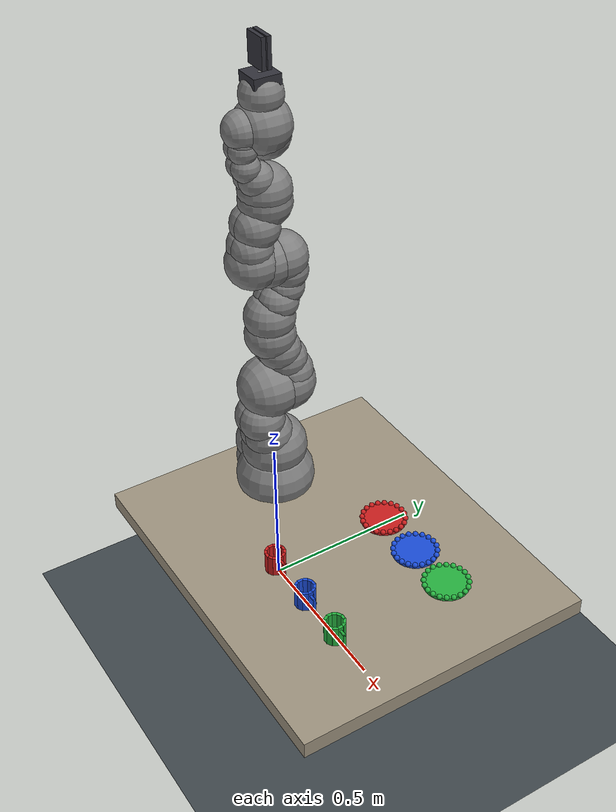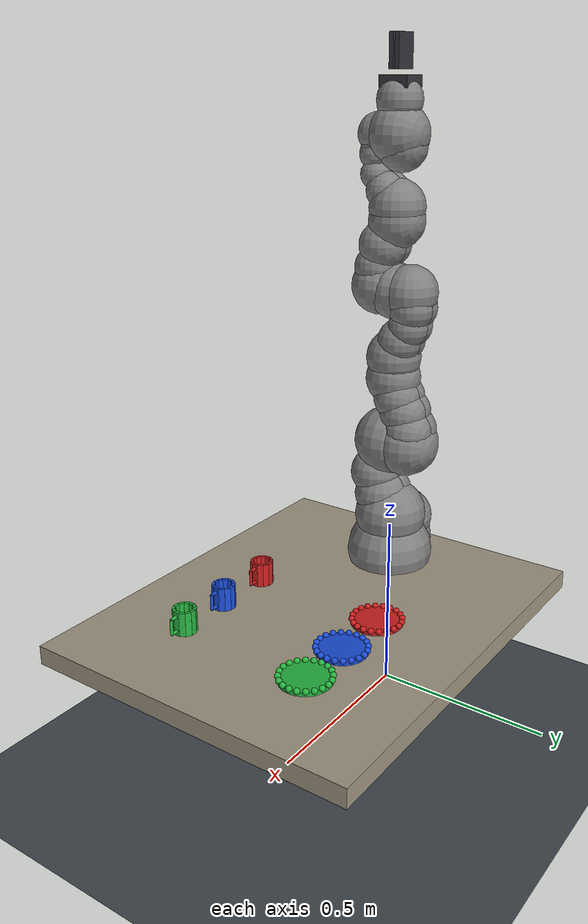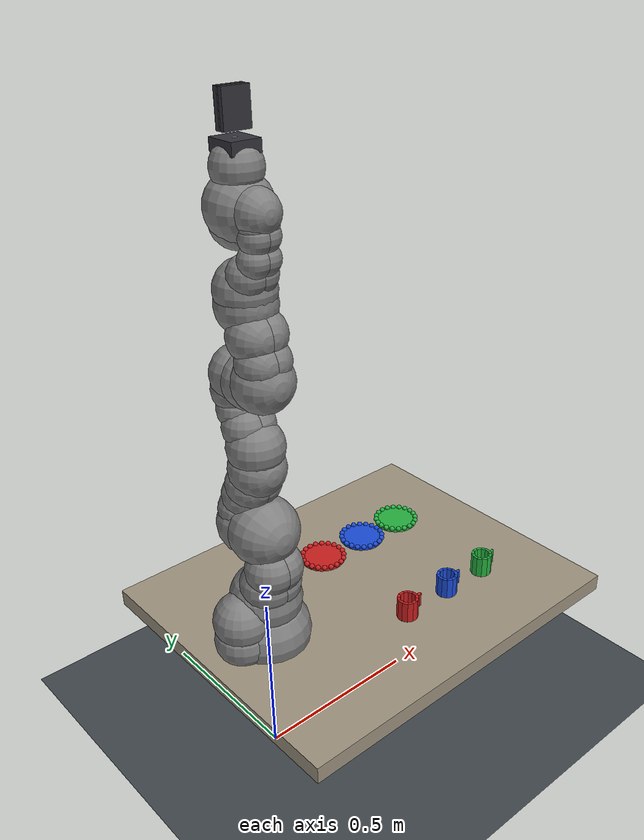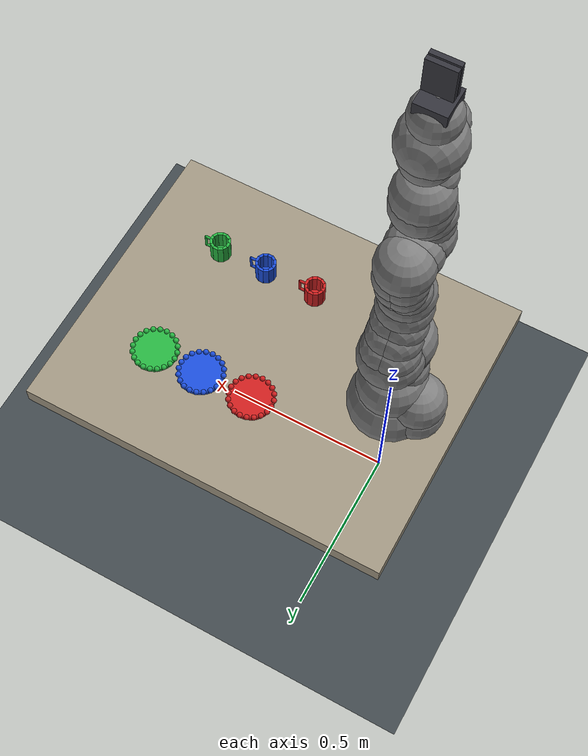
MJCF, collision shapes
<mujoco model="iiwa14_sort">
  <compiler angle="radian" meshdir="../assets/kuka_iiwa_14/assets" autolimits="true" />
  <option integrator="implicitfast" timestep=".001" cone="elliptic" />
  <default>
    <default class="iiwa">
      <material specular="0.5" shininess="0.25" />
      <joint axis="0 0 1" />
      <general gaintype="fixed" biastype="affine" gainprm="2000" biasprm="0 -2000 -200" />
      <default class="joint1">
        <joint range="-2.96706 2.96706" />
        <general ctrlrange="-2.96706 2.96706" />
        <default class="joint2">
          <joint range="-2.0944 2.0944" />
          <general ctrlrange="-2.0944 2.0944" />
        </default>
      </default>
      <default class="joint3">
        <joint range="-3.05433 3.05433" />
        <general ctrlrange="-3.05433 3.05433" />
      </default>
      <default class="visual">
        <geom type="mesh" contype="0" conaffinity="0" group="2" material="gray" />
      </default>
      <default class="collision">
        <geom group="3" />
      </default>
      <site size="0.001" rgba="1 0 0 1" group="4" />
    </default>
    <default class="tool">
      <geom type="box" friction="1.3 .01 .001" condim="4" rgba=".2 .2 .23 1" />
      <joint type="slide" damping="3" armature=".01" limited="true" range="0 .045" />
    </default>
  </default>
  <asset>
    <material class="iiwa" name="gray" rgba="0.4 0.4 0.4 1" />
    <material class="iiwa" name="light_gray" rgba="0.6 0.6 0.6 1" />
    <material class="iiwa" name="black" rgba="0 0 0 1" />
    <material class="iiwa" name="orange" rgba="1 0.423529 0.0392157 1" />
    <mesh file="link_0.obj" />
    <mesh file="link_1.obj" />
    <mesh file="link_2_orange.obj" />
    <mesh file="link_2_grey.obj" />
    <mesh file="link_3.obj" />
    <mesh file="band.obj" />
    <mesh file="kuka.obj" />
    <mesh file="link_4_orange.obj" />
    <mesh file="link_4_grey.obj" />
    <mesh file="link_5.obj" />
    <mesh file="link_6_orange.obj" />
    <mesh file="link_6_grey.obj" />
    <mesh file="link_7.obj" />
  </asset>
  <worldbody>
    <light name="top" pos="0 0 2" mode="trackcom" />
    <body name="base" childclass="iiwa" pos="0 0 .4">
      <inertial mass="5" pos="-0.1 0 0.07" diaginertia="0.05 0.06 0.03" />
      <geom class="visual" mesh="link_0" />
      <geom class="collision" size="0.12" pos="0 0 0.03" />
      <geom class="collision" size="0.08" pos="-0.08 0 0.103" />
      <geom class="collision" size="0.08" pos="-0.08 0 0.04" />
      <geom class="collision" size="0.1" pos="0 0 0.14" />
      <body name="link1" pos="0 0 0.1575">
        <inertial mass="5.76" pos="0 -0.03 0.12" diaginertia="0.0333 0.033 0.0123" />
        <joint name="joint1" class="joint1" />
        <geom class="visual" mesh="link_1" />
        <geom class="collision" size="0.08" pos="0 0 -0.0005" />
        <geom class="collision" size="0.075" pos="0.01 -0.025 0.0425" />
        <geom class="collision" size="0.075" pos="-0.01 -0.025 0.0425" />
        <geom class="collision" size="0.07" pos="0.01 -0.045 0.1025" />
        <geom class="collision" size="0.07" pos="-0.01 -0.045 0.1025" />
        <body name="link2" pos="0 0 0.2025" quat="0 0 1 1">
          <inertial mass="6.35" pos="0.0003 0.059 0.042" diaginertia="0.0305 0.0304 0.011" quat="0 0 1 1" />
          <joint name="joint2" class="joint2" />
          <geom class="visual" material="orange" mesh="link_2_orange" />
          <geom class="visual" mesh="link_2_grey" />
          <geom class="collision" size="0.095" pos="0 0 -0.01" />
          <geom class="collision" size="0.09" pos="0 0 0.045" />
          <geom class="collision" size="0.07" pos="-0.01 0.04 0.054" />
          <geom class="collision" size="0.065" pos="-0.01 0.09 0.04" />
          <geom class="collision" size="0.065" pos="-0.01 0.13 0.02" />
          <geom class="collision" size="0.07" pos="0.01 0.04 0.054" />
          <geom class="collision" size="0.065" pos="0.01 0.09 0.04" />
          <geom class="collision" size="0.065" pos="0.01 0.13 0.02" />
          <geom class="collision" size="0.075" pos="0 0.18 0" />
          <body name="link3" pos="0 0.2045 0" quat="0 0 1 1">
            <inertial mass="3.5" pos="0 0.03 0.13" diaginertia="0.025 0.0238 0.0076" />
            <joint name="joint3" class="joint1" />
            <geom class="visual" mesh="link_3" />
            <geom class="visual" material="light_gray" mesh="band" />
            <geom class="visual" material="black" mesh="kuka" />
            <geom class="collision" size="0.075" pos="0 0 0.0355" />
            <geom class="collision" size="0.06" pos="0.01 0.023 0.0855" />
            <geom class="collision" size="0.055" pos="0.01 0.048 0.1255" />
            <geom class="collision" size="0.06" pos="0.01 0.056 0.1755" />
            <geom class="collision" size="0.06" pos="-0.01 0.023 0.0855" />
            <geom class="collision" size="0.055" pos="-0.01 0.048 0.1255" />
            <geom class="collision" size="0.06" pos="-0.01 0.056 0.1755" />
            <geom class="collision" size="0.075" pos="0 0.045 0.2155" />
            <geom class="collision" size="0.075" pos="0 0 0.2155" />
            <body name="link4" pos="0 0 0.2155" quat="1 1 0 0">
              <inertial mass="3.5" pos="0 0.067 0.034" diaginertia="0.017 0.0164 0.006" quat="1 1 0 0" />
              <joint name="joint4" class="joint2" />
              <geom class="visual" material="orange" mesh="link_4_orange" />
              <geom class="visual" mesh="link_4_grey" />
              <geom class="collision" size="0.078" pos="0 0.01 0.046" />
              <geom class="collision" size="0.06" pos="0.01 0.06 0.052" />
              <geom class="collision" size="0.065" pos="0.01 0.12 0.034" />
              <geom class="collision" size="0.06" pos="-0.01 0.06 0.052" />
              <geom class="collision" size="0.065" pos="-0.01 0.12 0.034" />
              <geom class="collision" size="0.075" pos="0 0.184 0" />
              <body name="link5" pos="0 0.1845 0" quat="0 0 1 1">
                <inertial mass="3.5" pos="0.0001 0.021 0.076" diaginertia="0.01 0.0087 0.00449" />
                <joint name="joint5" class="joint1" />
                <geom class="visual" mesh="link_5" />
                <geom class="visual" material="light_gray" mesh="band" />
                <geom class="visual" material="black" mesh="kuka" />
                <geom class="collision" size="0.075" pos="0 0 0.0335" />
                <geom class="collision" size="0.05" pos="-0.012 0.031 0.0755" />
                <geom class="collision" size="0.05" pos="0.012 0.031 0.0755" />
                <geom class="collision" size="0.04" pos="-0.012 0.06 0.1155" />
                <geom class="collision" size="0.04" pos="0.012 0.06 0.1155" />
                <geom class="collision" size="0.04" pos="-0.01 0.065 0.1655" />
                <geom class="collision" size="0.04" pos="0.01 0.065 0.1655" />
                <geom class="collision" size="0.035" pos="-0.012 0.065 0.1855" />
                <geom class="collision" size="0.035" pos="0.012 0.065 0.1855" />
                <body name="link6" pos="0 0 0.2155" quat="1 1 0 0">
                  <inertial mass="1.8" pos="0 0.0006 0.0004" diaginertia="0.0049 0.0047 0.0036" quat="1 1 0 0" />
                  <joint name="joint6" class="joint2" />
                  <geom class="visual" material="orange" mesh="link_6_orange" />
                  <geom class="visual" mesh="link_6_grey" />
                  <geom class="collision" size="0.055" pos="0 0 -0.059" />
                  <geom class="collision" size="0.065" pos="0 -0.03 0.011" />
                  <geom class="collision" size="0.08" />
                  <body name="link7" pos="0 0.081 0" quat="0 0 1 1">
                    <inertial mass="1.2" pos="0 0 0.02" diaginertia="0.001 0.001 0.001" />
                    <joint name="joint7" class="joint3" />
                    <geom class="visual" mesh="link_7" />
                    <geom class="collision" size="0.06" pos="0 0 0.001" />
                    <site pos="0 0 0.045" name="attachment_site" />
                    <body name="tool" pos="0 0 0.045" quat="1 0 0 0" childclass="tool">
                      <geom name="palm" size=".038 .04 .015" mass=".15" />
                      <site name="grasp" pos="0 0 .09" size=".003" rgba="0 1 0 1" />
                      <camera name="wrist" pos=".06 0 .01" xyaxes="0 -1 0 1 0 0" fovy="75" />
                      <body name="left_finger" pos="0 0.008 0">
                        <joint name="left_jaw" axis="0 1 0" />
                        <geom name="left_pad" pos="0 0 .072" size=".035 .006 .043" mass=".05" />
                      </body>
                      <body name="right_finger" pos="0 -0.008 0">
                        <joint name="right_jaw" axis="0 -1 0" />
                        <geom name="right_pad" pos="0 0 .072" size=".035 .006 .043" mass=".05" />
                      </body>
                    </body>
                  </body>
                </body>
              </body>
            </body>
          </body>
        </body>
      </body>
    </body>
    <geom name="floor" type="plane" size="2 2 .1" rgba=".25 .28 .3 1" />
    <body name="table" pos=".35 0 .375">
      <geom name="table_top" type="box" size=".55 .45 .025" rgba=".62 .58 .50 1" friction="1 .01 .001" />
    </body>
    <light name="key_light" pos="0 -1 2" dir=".2 .3 -1" diffuse=".85 .85 .85" />
    <camera name="overview" pos="1.25 -1.15 1.35" xyaxes=".75 .66 0 -.34 .39 .86" fovy="48" />
    <body name="cup0" pos="0.34 -0.2 0.438">
      <freejoint name="cup0_free" />
      <geom name="cup0_bottom" type="cylinder" size=".027 .004" pos="0 0 -.03" mass=".03" rgba="0.8 0.12 0.12 1" friction="1.2 .01 .001" />
      <geom name="cup0_wall0" type="box" size=".004 .008 .032" pos="0.026 0 0" euler="0 0 0.0" mass=".004" rgba="0.8 0.12 0.12 1" friction="1.2 .01 .001" />
      <geom name="cup0_wall1" type="box" size=".004 .008 .032" pos="0.02251666 0.013 0" euler="0 0 0.5235987755982988" mass=".004" rgba="0.8 0.12 0.12 1" friction="1.2 .01 .001" />
      <geom name="cup0_wall2" type="box" size=".004 .008 .032" pos="0.013 0.02251666 0" euler="0 0 1.0471975511965976" mass=".004" rgba="0.8 0.12 0.12 1" friction="1.2 .01 .001" />
      <geom name="cup0_wall3" type="box" size=".004 .008 .032" pos="1.5920408e-18 0.026 0" euler="0 0 1.5707963267948966" mass=".004" rgba="0.8 0.12 0.12 1" friction="1.2 .01 .001" />
      <geom name="cup0_wall4" type="box" size=".004 .008 .032" pos="-0.013 0.02251666 0" euler="0 0 2.0943951023931953" mass=".004" rgba="0.8 0.12 0.12 1" friction="1.2 .01 .001" />
      <geom name="cup0_wall5" type="box" size=".004 .008 .032" pos="-0.02251666 0.013 0" euler="0 0 2.6179938779914944" mass=".004" rgba="0.8 0.12 0.12 1" friction="1.2 .01 .001" />
      <geom name="cup0_wall6" type="box" size=".004 .008 .032" pos="-0.026 3.1840817e-18 0" euler="0 0 3.141592653589793" mass=".004" rgba="0.8 0.12 0.12 1" friction="1.2 .01 .001" />
      <geom name="cup0_wall7" type="box" size=".004 .008 .032" pos="-0.02251666 -0.013 0" euler="0 0 3.665191429188092" mass=".004" rgba="0.8 0.12 0.12 1" friction="1.2 .01 .001" />
      <geom name="cup0_wall8" type="box" size=".004 .008 .032" pos="-0.013 -0.02251666 0" euler="0 0 4.1887902047863905" mass=".004" rgba="0.8 0.12 0.12 1" friction="1.2 .01 .001" />
      <geom name="cup0_wall9" type="box" size=".004 .008 .032" pos="-4.7761225e-18 -0.026 0" euler="0 0 4.71238898038469" mass=".004" rgba="0.8 0.12 0.12 1" friction="1.2 .01 .001" />
      <geom name="cup0_wall10" type="box" size=".004 .008 .032" pos="0.013 -0.02251666 0" euler="0 0 5.235987755982989" mass=".004" rgba="0.8 0.12 0.12 1" friction="1.2 .01 .001" />
      <geom name="cup0_wall11" type="box" size=".004 .008 .032" pos="0.02251666 -0.013 0" euler="0 0 5.759586531581287" mass=".004" rgba="0.8 0.12 0.12 1" friction="1.2 .01 .001" />
      <geom name="cup0_handle0" type="capsule" fromto="0.03 0 -0.02 0.048 0 -0.02" size=".004" mass=".002" rgba="0.8 0.12 0.12 1" />
      <geom name="cup0_handle1" type="capsule" fromto="0.048 0 -0.02 0.048 0 0.02" size=".004" mass=".002" rgba="0.8 0.12 0.12 1" />
      <geom name="cup0_handle2" type="capsule" fromto="0.048 0 0.02 0.03 0 0.02" size=".004" mass=".002" rgba="0.8 0.12 0.12 1" />
    </body>
    <body name="target0" pos="0.34 0.17 0.414">
      <geom name="plate0" type="cylinder" size=".067 .005" pos="0 0 -.005" rgba="0.8 0.12 0.12 1" />
      <geom name="plate0_rim0" type="sphere" size=".008" pos="0.064 0 0.001" rgba="0.8 0.12 0.12 1" />
      <geom name="plate0_rim1" type="sphere" size=".008" pos="0.060867617 0.019777088 0.001" rgba="0.8 0.12 0.12 1" />
      <geom name="plate0_rim2" type="sphere" size=".008" pos="0.051777088 0.037618256 0.001" rgba="0.8 0.12 0.12 1" />
      <geom name="plate0_rim3" type="sphere" size=".008" pos="0.037618256 0.051777088 0.001" rgba="0.8 0.12 0.12 1" />
      <geom name="plate0_rim4" type="sphere" size=".008" pos="0.019777088 0.060867617 0.001" rgba="0.8 0.12 0.12 1" />
      <geom name="plate0_rim5" type="sphere" size=".008" pos="3.9188698e-18 0.064 0.001" rgba="0.8 0.12 0.12 1" />
      <geom name="plate0_rim6" type="sphere" size=".008" pos="-0.019777088 0.060867617 0.001" rgba="0.8 0.12 0.12 1" />
      <geom name="plate0_rim7" type="sphere" size=".008" pos="-0.037618256 0.051777088 0.001" rgba="0.8 0.12 0.12 1" />
      <geom name="plate0_rim8" type="sphere" size=".008" pos="-0.051777088 0.037618256 0.001" rgba="0.8 0.12 0.12 1" />
      <geom name="plate0_rim9" type="sphere" size=".008" pos="-0.060867617 0.019777088 0.001" rgba="0.8 0.12 0.12 1" />
      <geom name="plate0_rim10" type="sphere" size=".008" pos="-0.064 7.8377395e-18 0.001" rgba="0.8 0.12 0.12 1" />
      <geom name="plate0_rim11" type="sphere" size=".008" pos="-0.060867617 -0.019777088 0.001" rgba="0.8 0.12 0.12 1" />
      <geom name="plate0_rim12" type="sphere" size=".008" pos="-0.051777088 -0.037618256 0.001" rgba="0.8 0.12 0.12 1" />
      <geom name="plate0_rim13" type="sphere" size=".008" pos="-0.037618256 -0.051777088 0.001" rgba="0.8 0.12 0.12 1" />
      <geom name="plate0_rim14" type="sphere" size=".008" pos="-0.019777088 -0.060867617 0.001" rgba="0.8 0.12 0.12 1" />
      <geom name="plate0_rim15" type="sphere" size=".008" pos="-1.1756609e-17 -0.064 0.001" rgba="0.8 0.12 0.12 1" />
      <geom name="plate0_rim16" type="sphere" size=".008" pos="0.019777088 -0.060867617 0.001" rgba="0.8 0.12 0.12 1" />
      <geom name="plate0_rim17" type="sphere" size=".008" pos="0.037618256 -0.051777088 0.001" rgba="0.8 0.12 0.12 1" />
      <geom name="plate0_rim18" type="sphere" size=".008" pos="0.051777088 -0.037618256 0.001" rgba="0.8 0.12 0.12 1" />
      <geom name="plate0_rim19" type="sphere" size=".008" pos="0.060867617 -0.019777088 0.001" rgba="0.8 0.12 0.12 1" />
    </body>
    <body name="cup1" pos="0.5 -0.2 0.438">
      <freejoint name="cup1_free" />
      <geom name="cup1_bottom" type="cylinder" size=".027 .004" pos="0 0 -.03" mass=".03" rgba="0.1 0.3 0.85 1" friction="1.2 .01 .001" />
      <geom name="cup1_wall0" type="box" size=".004 .008 .032" pos="0.026 0 0" euler="0 0 0.0" mass=".004" rgba="0.1 0.3 0.85 1" friction="1.2 .01 .001" />
      <geom name="cup1_wall1" type="box" size=".004 .008 .032" pos="0.02251666 0.013 0" euler="0 0 0.5235987755982988" mass=".004" rgba="0.1 0.3 0.85 1" friction="1.2 .01 .001" />
      <geom name="cup1_wall2" type="box" size=".004 .008 .032" pos="0.013 0.02251666 0" euler="0 0 1.0471975511965976" mass=".004" rgba="0.1 0.3 0.85 1" friction="1.2 .01 .001" />
      <geom name="cup1_wall3" type="box" size=".004 .008 .032" pos="1.5920408e-18 0.026 0" euler="0 0 1.5707963267948966" mass=".004" rgba="0.1 0.3 0.85 1" friction="1.2 .01 .001" />
      <geom name="cup1_wall4" type="box" size=".004 .008 .032" pos="-0.013 0.02251666 0" euler="0 0 2.0943951023931953" mass=".004" rgba="0.1 0.3 0.85 1" friction="1.2 .01 .001" />
      <geom name="cup1_wall5" type="box" size=".004 .008 .032" pos="-0.02251666 0.013 0" euler="0 0 2.6179938779914944" mass=".004" rgba="0.1 0.3 0.85 1" friction="1.2 .01 .001" />
      <geom name="cup1_wall6" type="box" size=".004 .008 .032" pos="-0.026 3.1840817e-18 0" euler="0 0 3.141592653589793" mass=".004" rgba="0.1 0.3 0.85 1" friction="1.2 .01 .001" />
      <geom name="cup1_wall7" type="box" size=".004 .008 .032" pos="-0.02251666 -0.013 0" euler="0 0 3.665191429188092" mass=".004" rgba="0.1 0.3 0.85 1" friction="1.2 .01 .001" />
      <geom name="cup1_wall8" type="box" size=".004 .008 .032" pos="-0.013 -0.02251666 0" euler="0 0 4.1887902047863905" mass=".004" rgba="0.1 0.3 0.85 1" friction="1.2 .01 .001" />
      <geom name="cup1_wall9" type="box" size=".004 .008 .032" pos="-4.7761225e-18 -0.026 0" euler="0 0 4.71238898038469" mass=".004" rgba="0.1 0.3 0.85 1" friction="1.2 .01 .001" />
      <geom name="cup1_wall10" type="box" size=".004 .008 .032" pos="0.013 -0.02251666 0" euler="0 0 5.235987755982989" mass=".004" rgba="0.1 0.3 0.85 1" friction="1.2 .01 .001" />
      <geom name="cup1_wall11" type="box" size=".004 .008 .032" pos="0.02251666 -0.013 0" euler="0 0 5.759586531581287" mass=".004" rgba="0.1 0.3 0.85 1" friction="1.2 .01 .001" />
      <geom name="cup1_handle0" type="capsule" fromto="0.03 0 -0.02 0.048 0 -0.02" size=".004" mass=".002" rgba="0.1 0.3 0.85 1" />
      <geom name="cup1_handle1" type="capsule" fromto="0.048 0 -0.02 0.048 0 0.02" size=".004" mass=".002" rgba="0.1 0.3 0.85 1" />
      <geom name="cup1_handle2" type="capsule" fromto="0.048 0 0.02 0.03 0 0.02" size=".004" mass=".002" rgba="0.1 0.3 0.85 1" />
    </body>
    <body name="target1" pos="0.5 0.17 0.414">
      <geom name="plate1" type="cylinder" size=".067 .005" pos="0 0 -.005" rgba="0.1 0.3 0.85 1" />
      <geom name="plate1_rim0" type="sphere" size=".008" pos="0.064 0 0.001" rgba="0.1 0.3 0.85 1" />
      <geom name="plate1_rim1" type="sphere" size=".008" pos="0.060867617 0.019777088 0.001" rgba="0.1 0.3 0.85 1" />
      <geom name="plate1_rim2" type="sphere" size=".008" pos="0.051777088 0.037618256 0.001" rgba="0.1 0.3 0.85 1" />
      <geom name="plate1_rim3" type="sphere" size=".008" pos="0.037618256 0.051777088 0.001" rgba="0.1 0.3 0.85 1" />
      <geom name="plate1_rim4" type="sphere" size=".008" pos="0.019777088 0.060867617 0.001" rgba="0.1 0.3 0.85 1" />
      <geom name="plate1_rim5" type="sphere" size=".008" pos="3.9188698e-18 0.064 0.001" rgba="0.1 0.3 0.85 1" />
      <geom name="plate1_rim6" type="sphere" size=".008" pos="-0.019777088 0.060867617 0.001" rgba="0.1 0.3 0.85 1" />
      <geom name="plate1_rim7" type="sphere" size=".008" pos="-0.037618256 0.051777088 0.001" rgba="0.1 0.3 0.85 1" />
      <geom name="plate1_rim8" type="sphere" size=".008" pos="-0.051777088 0.037618256 0.001" rgba="0.1 0.3 0.85 1" />
      <geom name="plate1_rim9" type="sphere" size=".008" pos="-0.060867617 0.019777088 0.001" rgba="0.1 0.3 0.85 1" />
      <geom name="plate1_rim10" type="sphere" size=".008" pos="-0.064 7.8377395e-18 0.001" rgba="0.1 0.3 0.85 1" />
      <geom name="plate1_rim11" type="sphere" size=".008" pos="-0.060867617 -0.019777088 0.001" rgba="0.1 0.3 0.85 1" />
      <geom name="plate1_rim12" type="sphere" size=".008" pos="-0.051777088 -0.037618256 0.001" rgba="0.1 0.3 0.85 1" />
      <geom name="plate1_rim13" type="sphere" size=".008" pos="-0.037618256 -0.051777088 0.001" rgba="0.1 0.3 0.85 1" />
      <geom name="plate1_rim14" type="sphere" size=".008" pos="-0.019777088 -0.060867617 0.001" rgba="0.1 0.3 0.85 1" />
      <geom name="plate1_rim15" type="sphere" size=".008" pos="-1.1756609e-17 -0.064 0.001" rgba="0.1 0.3 0.85 1" />
      <geom name="plate1_rim16" type="sphere" size=".008" pos="0.019777088 -0.060867617 0.001" rgba="0.1 0.3 0.85 1" />
      <geom name="plate1_rim17" type="sphere" size=".008" pos="0.037618256 -0.051777088 0.001" rgba="0.1 0.3 0.85 1" />
      <geom name="plate1_rim18" type="sphere" size=".008" pos="0.051777088 -0.037618256 0.001" rgba="0.1 0.3 0.85 1" />
      <geom name="plate1_rim19" type="sphere" size=".008" pos="0.060867617 -0.019777088 0.001" rgba="0.1 0.3 0.85 1" />
    </body>
    <body name="cup2" pos="0.65 -0.2 0.438">
      <freejoint name="cup2_free" />
      <geom name="cup2_bottom" type="cylinder" size=".027 .004" pos="0 0 -.03" mass=".03" rgba="0.15 0.7 0.25 1" friction="1.2 .01 .001" />
      <geom name="cup2_wall0" type="box" size=".004 .008 .032" pos="0.026 0 0" euler="0 0 0.0" mass=".004" rgba="0.15 0.7 0.25 1" friction="1.2 .01 .001" />
      <geom name="cup2_wall1" type="box" size=".004 .008 .032" pos="0.02251666 0.013 0" euler="0 0 0.5235987755982988" mass=".004" rgba="0.15 0.7 0.25 1" friction="1.2 .01 .001" />
      <geom name="cup2_wall2" type="box" size=".004 .008 .032" pos="0.013 0.02251666 0" euler="0 0 1.0471975511965976" mass=".004" rgba="0.15 0.7 0.25 1" friction="1.2 .01 .001" />
      <geom name="cup2_wall3" type="box" size=".004 .008 .032" pos="1.5920408e-18 0.026 0" euler="0 0 1.5707963267948966" mass=".004" rgba="0.15 0.7 0.25 1" friction="1.2 .01 .001" />
      <geom name="cup2_wall4" type="box" size=".004 .008 .032" pos="-0.013 0.02251666 0" euler="0 0 2.0943951023931953" mass=".004" rgba="0.15 0.7 0.25 1" friction="1.2 .01 .001" />
      <geom name="cup2_wall5" type="box" size=".004 .008 .032" pos="-0.02251666 0.013 0" euler="0 0 2.6179938779914944" mass=".004" rgba="0.15 0.7 0.25 1" friction="1.2 .01 .001" />
      <geom name="cup2_wall6" type="box" size=".004 .008 .032" pos="-0.026 3.1840817e-18 0" euler="0 0 3.141592653589793" mass=".004" rgba="0.15 0.7 0.25 1" friction="1.2 .01 .001" />
      <geom name="cup2_wall7" type="box" size=".004 .008 .032" pos="-0.02251666 -0.013 0" euler="0 0 3.665191429188092" mass=".004" rgba="0.15 0.7 0.25 1" friction="1.2 .01 .001" />
      <geom name="cup2_wall8" type="box" size=".004 .008 .032" pos="-0.013 -0.02251666 0" euler="0 0 4.1887902047863905" mass=".004" rgba="0.15 0.7 0.25 1" friction="1.2 .01 .001" />
      <geom name="cup2_wall9" type="box" size=".004 .008 .032" pos="-4.7761225e-18 -0.026 0" euler="0 0 4.71238898038469" mass=".004" rgba="0.15 0.7 0.25 1" friction="1.2 .01 .001" />
      <geom name="cup2_wall10" type="box" size=".004 .008 .032" pos="0.013 -0.02251666 0" euler="0 0 5.235987755982989" mass=".004" rgba="0.15 0.7 0.25 1" friction="1.2 .01 .001" />
      <geom name="cup2_wall11" type="box" size=".004 .008 .032" pos="0.02251666 -0.013 0" euler="0 0 5.759586531581287" mass=".004" rgba="0.15 0.7 0.25 1" friction="1.2 .01 .001" />
      <geom name="cup2_handle0" type="capsule" fromto="0.03 0 -0.02 0.048 0 -0.02" size=".004" mass=".002" rgba="0.15 0.7 0.25 1" />
      <geom name="cup2_handle1" type="capsule" fromto="0.048 0 -0.02 0.048 0 0.02" size=".004" mass=".002" rgba="0.15 0.7 0.25 1" />
      <geom name="cup2_handle2" type="capsule" fromto="0.048 0 0.02 0.03 0 0.02" size=".004" mass=".002" rgba="0.15 0.7 0.25 1" />
    </body>
    <body name="target2" pos="0.65 0.17 0.414">
      <geom name="plate2" type="cylinder" size=".067 .005" pos="0 0 -.005" rgba="0.15 0.7 0.25 1" />
      <geom name="plate2_rim0" type="sphere" size=".008" pos="0.064 0 0.001" rgba="0.15 0.7 0.25 1" />
      <geom name="plate2_rim1" type="sphere" size=".008" pos="0.060867617 0.019777088 0.001" rgba="0.15 0.7 0.25 1" />
      <geom name="plate2_rim2" type="sphere" size=".008" pos="0.051777088 0.037618256 0.001" rgba="0.15 0.7 0.25 1" />
      <geom name="plate2_rim3" type="sphere" size=".008" pos="0.037618256 0.051777088 0.001" rgba="0.15 0.7 0.25 1" />
      <geom name="plate2_rim4" type="sphere" size=".008" pos="0.019777088 0.060867617 0.001" rgba="0.15 0.7 0.25 1" />
      <geom name="plate2_rim5" type="sphere" size=".008" pos="3.9188698e-18 0.064 0.001" rgba="0.15 0.7 0.25 1" />
      <geom name="plate2_rim6" type="sphere" size=".008" pos="-0.019777088 0.060867617 0.001" rgba="0.15 0.7 0.25 1" />
      <geom name="plate2_rim7" type="sphere" size=".008" pos="-0.037618256 0.051777088 0.001" rgba="0.15 0.7 0.25 1" />
      <geom name="plate2_rim8" type="sphere" size=".008" pos="-0.051777088 0.037618256 0.001" rgba="0.15 0.7 0.25 1" />
      <geom name="plate2_rim9" type="sphere" size=".008" pos="-0.060867617 0.019777088 0.001" rgba="0.15 0.7 0.25 1" />
      <geom name="plate2_rim10" type="sphere" size=".008" pos="-0.064 7.8377395e-18 0.001" rgba="0.15 0.7 0.25 1" />
      <geom name="plate2_rim11" type="sphere" size=".008" pos="-0.060867617 -0.019777088 0.001" rgba="0.15 0.7 0.25 1" />
      <geom name="plate2_rim12" type="sphere" size=".008" pos="-0.051777088 -0.037618256 0.001" rgba="0.15 0.7 0.25 1" />
      <geom name="plate2_rim13" type="sphere" size=".008" pos="-0.037618256 -0.051777088 0.001" rgba="0.15 0.7 0.25 1" />
      <geom name="plate2_rim14" type="sphere" size=".008" pos="-0.019777088 -0.060867617 0.001" rgba="0.15 0.7 0.25 1" />
      <geom name="plate2_rim15" type="sphere" size=".008" pos="-1.1756609e-17 -0.064 0.001" rgba="0.15 0.7 0.25 1" />
      <geom name="plate2_rim16" type="sphere" size=".008" pos="0.019777088 -0.060867617 0.001" rgba="0.15 0.7 0.25 1" />
      <geom name="plate2_rim17" type="sphere" size=".008" pos="0.037618256 -0.051777088 0.001" rgba="0.15 0.7 0.25 1" />
      <geom name="plate2_rim18" type="sphere" size=".008" pos="0.051777088 -0.037618256 0.001" rgba="0.15 0.7 0.25 1" />
      <geom name="plate2_rim19" type="sphere" size=".008" pos="0.060867617 -0.019777088 0.001" rgba="0.15 0.7 0.25 1" />
    </body>
  </worldbody>
  <contact>
    <exclude body1="base" body2="link1" />
    <exclude body1="base" body2="link2" />
    <exclude body1="base" body2="link3" />
    <exclude body1="link1" body2="link3" />
    <exclude body1="link3" body2="link5" />
    <exclude body1="link4" body2="link7" />
    <exclude body1="link5" body2="link7" />
  </contact>
  <actuator>
    <general name="actuator1" joint="joint1" class="joint1" />
    <general name="actuator2" joint="joint2" class="joint2" />
    <general name="actuator3" joint="joint3" class="joint1" />
    <general name="actuator4" joint="joint4" class="joint2" />
    <general name="actuator5" joint="joint5" class="joint1" />
    <general name="actuator6" joint="joint6" class="joint2" />
    <general name="actuator7" joint="joint7" class="joint3" />
    <position name="left_jaw_motor" joint="left_jaw" kp="150" kv="5" ctrlrange="0 .045" forcerange="-8 8" />
    <position name="right_jaw_motor" joint="right_jaw" kp="150" kv="5" ctrlrange="0 .045" forcerange="-8 8" />
  </actuator>
  <visual>
    <global offwidth="640" offheight="480" />
  </visual>
  <keyframe>
    <key name="home" qpos="0.99502076 1.3034311 -1.7607329 -1.9781739 1.2500251 1.6333484 2.1225553 0.045 0.045 0.34219139 -0.20368341 0.438 1 0 0 0 0.49265558 -0.20773556 0.438 1 0 0 0 0.65501232 -0.19339591 0.438 1 0 0 0" ctrl="0.99502076 1.3034311 -1.7607329 -1.9781739 1.2500251 1.6333484 2.1225553 0.045 0.045" />
  </keyframe>
</mujoco>
